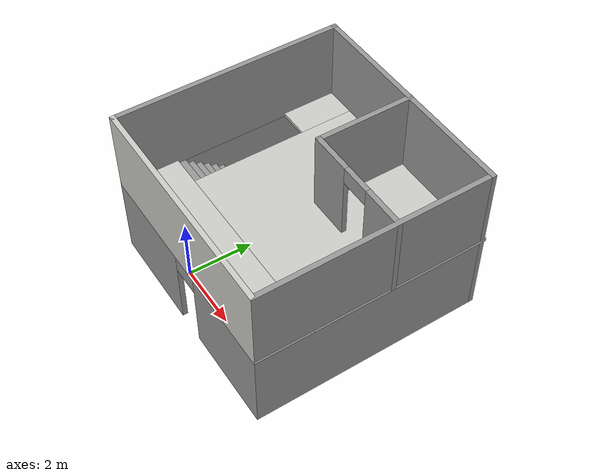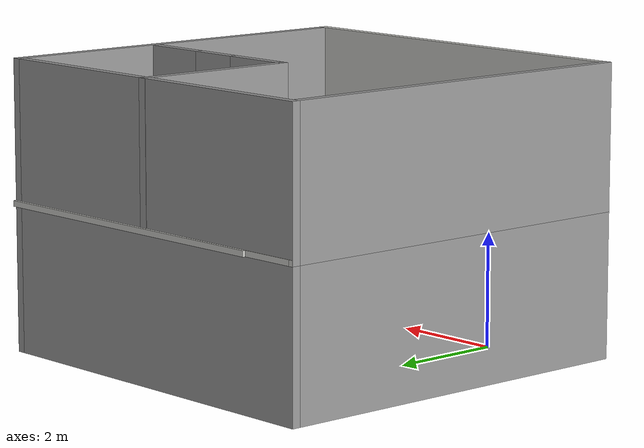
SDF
<?xml version='1.0'?>
<sdf version='1.6'>
  <model name='Square_Building'>
    <pose frame=''>1.58944 2.61352 0 0 -0 0</pose>
    <link name='Floor_1'>
      <pose frame=''>0 0 2.5 0 -0 0</pose>
      <visual name='Floor_1_Visual_0'>
        <pose frame=''>-3.46049 0 0.05 0 -0 0</pose>
        <geometry>
          <box>
            <size>0.079016 7.0068 0.1</size>
          </box>
        </geometry>
        <material>
          <script>
            <uri>file://media/materials/scripts/gazebo.material</uri>
            <name>Gazebo/CeilingTiled</name>
          </script>
          <ambient>1 0.764706 0.305882 1</ambient>
        </material>
      </visual>
      <collision name='Floor_1_Collision_0'>
        <geometry>
          <box>
            <size>0.079016 7.0068 0.1</size>
          </box>
        </geometry>
        <pose frame=''>-3.46049 0 0.05 0 -0 0</pose>
      </collision>
      <visual name='Floor_1_Visual_1'>
        <pose frame=''>0.039508 -2.65084 0.05 0 -0 0</pose>
        <geometry>
          <box>
            <size>6.92098 1.70511 0.1</size>
          </box>
        </geometry>
        <material>
          <script>
            <uri>file://media/materials/scripts/gazebo.material</uri>
            <name>Gazebo/CeilingTiled</name>
          </script>
          <ambient>1 0.764706 0.305882 1</ambient>
        </material>
      </visual>
      <collision name='Floor_1_Collision_1'>
        <geometry>
          <box>
            <size>6.92098 1.70511 0.1</size>
          </box>
        </geometry>
        <pose frame=''>0.039508 -2.65084 0.05 0 -0 0</pose>
      </collision>
      <visual name='Floor_1_Visual_2'>
        <pose frame=''>0.539508 0.852556 0.05 0 -0 0</pose>
        <geometry>
          <box>
            <size>5.92098 5.30168 0.1</size>
          </box>
        </geometry>
        <material>
          <script>
            <uri>file://media/materials/scripts/gazebo.material</uri>
            <name>Gazebo/CeilingTiled</name>
          </script>
          <ambient>1 0.764706 0.305882 1</ambient>
        </material>
      </visual>
      <collision name='Floor_1_Collision_2'>
        <geometry>
          <box>
            <size>5.92098 5.30168 0.1</size>
          </box>
        </geometry>
        <pose frame=''>0.539508 0.852556 0.05 0 -0 0</pose>
      </collision>
      <visual name='Floor_1_Visual_3'>
        <pose frame=''>-2.92098 2.60256 0.05 0 -0 0</pose>
        <geometry>
          <box>
            <size>1 1.80168 0.1</size>
          </box>
        </geometry>
        <material>
          <script>
            <uri>file://media/materials/scripts/gazebo.material</uri>
            <name>Gazebo/CeilingTiled</name>
          </script>
          <ambient>1 0.764706 0.305882 1</ambient>
        </material>
      </visual>
      <collision name='Floor_1_Collision_3'>
        <geometry>
          <box>
            <size>1 1.80168 0.1</size>
          </box>
        </geometry>
        <pose frame=''>-2.92098 2.60256 0.05 0 -0 0</pose>
      </collision>
      <visual name='Floor_1_Visual_4'>
        <pose frame=''>0.539508 3.5034 0.05 0 -0 0</pose>
        <geometry>
          <box>
            <size>5.92098 0.1 0.1</size>
          </box>
        </geometry>
        <material>
          <script>
            <uri>file://media/materials/scripts/gazebo.material</uri>
            <name>Gazebo/CeilingTiled</name>
          </script>
          <ambient>1 0.764706 0.305882 1</ambient>
        </material>
      </visual>
      <collision name='Floor_1_Collision_4'>
        <geometry>
          <box>
            <size>5.92098 0.1 0.1</size>
          </box>
        </geometry>
        <pose frame=''>0.539508 3.5034 0.05 0 -0 0</pose>
      </collision>
    </link>
    <link name='Stairs_1'>
      <visual name='Stairs_1_Visual_0'>
        <pose frame=''>-2.92098 1.58505 0.083333 0 -0 0</pose>
        <geometry>
          <box>
            <size>1 0.233333 0.166667</size>
          </box>
        </geometry>
        <material>
          <script>
            <uri>file://media/materials/scripts/gazebo.material</uri>
            <name>Gazebo/Grey</name>
          </script>
          <ambient>1 1 1 1</ambient>
        </material>
      </visual>
      <collision name='Stairs_1_Collision_0'>
        <geometry>
          <box>
            <size>1 0.233333 0.166667</size>
          </box>
        </geometry>
        <pose frame=''>-2.92098 1.58505 0.083333 0 -0 0</pose>
      </collision>
      <visual name='Stairs_1_Visual_1'>
        <pose frame=''>-2.92098 1.35171 0.25 0 -0 0</pose>
        <geometry>
          <box>
            <size>1 0.233333 0.166667</size>
          </box>
        </geometry>
        <material>
          <script>
            <uri>file://media/materials/scripts/gazebo.material</uri>
            <name>Gazebo/Grey</name>
          </script>
          <ambient>1 1 1 1</ambient>
        </material>
      </visual>
      <collision name='Stairs_1_Collision_1'>
        <geometry>
          <box>
            <size>1 0.233333 0.166667</size>
          </box>
        </geometry>
        <pose frame=''>-2.92098 1.35171 0.25 0 -0 0</pose>
      </collision>
      <visual name='Stairs_1_Visual_2'>
        <pose frame=''>-2.92098 1.11838 0.416667 0 -0 0</pose>
        <geometry>
          <box>
            <size>1 0.233333 0.166667</size>
          </box>
        </geometry>
        <material>
          <script>
            <uri>file://media/materials/scripts/gazebo.material</uri>
            <name>Gazebo/Grey</name>
          </script>
          <ambient>1 1 1 1</ambient>
        </material>
      </visual>
      <collision name='Stairs_1_Collision_2'>
        <geometry>
          <box>
            <size>1 0.233333 0.166667</size>
          </box>
        </geometry>
        <pose frame=''>-2.92098 1.11838 0.416667 0 -0 0</pose>
      </collision>
      <visual name='Stairs_1_Visual_3'>
        <pose frame=''>-2.92098 0.885047 0.583333 0 -0 0</pose>
        <geometry>
          <box>
            <size>1 0.233333 0.166667</size>
          </box>
        </geometry>
        <material>
          <script>
            <uri>file://media/materials/scripts/gazebo.material</uri>
            <name>Gazebo/Grey</name>
          </script>
          <ambient>1 1 1 1</ambient>
        </material>
      </visual>
      <collision name='Stairs_1_Collision_3'>
        <geometry>
          <box>
            <size>1 0.233333 0.166667</size>
          </box>
        </geometry>
        <pose frame=''>-2.92098 0.885047 0.583333 0 -0 0</pose>
      </collision>
      <visual name='Stairs_1_Visual_4'>
        <pose frame=''>-2.92098 0.651714 0.75 0 -0 0</pose>
        <geometry>
          <box>
            <size>1 0.233333 0.166667</size>
          </box>
        </geometry>
        <material>
          <script>
            <uri>file://media/materials/scripts/gazebo.material</uri>
            <name>Gazebo/Grey</name>
          </script>
          <ambient>1 1 1 1</ambient>
        </material>
      </visual>
      <collision name='Stairs_1_Collision_4'>
        <geometry>
          <box>
            <size>1 0.233333 0.166667</size>
          </box>
        </geometry>
        <pose frame=''>-2.92098 0.651714 0.75 0 -0 0</pose>
      </collision>
      <visual name='Stairs_1_Visual_5'>
        <pose frame=''>-2.92098 0.41838 0.916667 0 -0 0</pose>
        <geometry>
          <box>
            <size>1 0.233333 0.166667</size>
          </box>
        </geometry>
        <material>
          <script>
            <uri>file://media/materials/scripts/gazebo.material</uri>
            <name>Gazebo/Grey</name>
          </script>
          <ambient>1 1 1 1</ambient>
        </material>
      </visual>
      <collision name='Stairs_1_Collision_5'>
        <geometry>
          <box>
            <size>1 0.233333 0.166667</size>
          </box>
        </geometry>
        <pose frame=''>-2.92098 0.41838 0.916667 0 -0 0</pose>
      </collision>
      <visual name='Stairs_1_Visual_6'>
        <pose frame=''>-2.92098 0.185047 1.08333 0 -0 0</pose>
        <geometry>
          <box>
            <size>1 0.233333 0.166667</size>
          </box>
        </geometry>
        <material>
          <script>
            <uri>file://media/materials/scripts/gazebo.material</uri>
            <name>Gazebo/Grey</name>
          </script>
          <ambient>1 1 1 1</ambient>
        </material>
      </visual>
      <collision name='Stairs_1_Collision_6'>
        <geometry>
          <box>
            <size>1 0.233333 0.166667</size>
          </box>
        </geometry>
        <pose frame=''>-2.92098 0.185047 1.08333 0 -0 0</pose>
      </collision>
      <visual name='Stairs_1_Visual_7'>
        <pose frame=''>-2.92098 -0.048286 1.25 0 -0 0</pose>
        <geometry>
          <box>
            <size>1 0.233333 0.166667</size>
          </box>
        </geometry>
        <material>
          <script>
            <uri>file://media/materials/scripts/gazebo.material</uri>
            <name>Gazebo/Grey</name>
          </script>
          <ambient>1 1 1 1</ambient>
        </material>
      </visual>
      <collision name='Stairs_1_Collision_7'>
        <geometry>
          <box>
            <size>1 0.233333 0.166667</size>
          </box>
        </geometry>
        <pose frame=''>-2.92098 -0.048286 1.25 0 -0 0</pose>
      </collision>
      <visual name='Stairs_1_Visual_8'>
        <pose frame=''>-2.92098 -0.28162 1.41667 0 -0 0</pose>
        <geometry>
          <box>
            <size>1 0.233333 0.166667</size>
          </box>
        </geometry>
        <material>
          <script>
            <uri>file://media/materials/scripts/gazebo.material</uri>
            <name>Gazebo/Grey</name>
          </script>
          <ambient>1 1 1 1</ambient>
        </material>
      </visual>
      <collision name='Stairs_1_Collision_8'>
        <geometry>
          <box>
            <size>1 0.233333 0.166667</size>
          </box>
        </geometry>
        <pose frame=''>-2.92098 -0.28162 1.41667 0 -0 0</pose>
      </collision>
      <visual name='Stairs_1_Visual_9'>
        <pose frame=''>-2.92098 -0.514953 1.58333 0 -0 0</pose>
        <geometry>
          <box>
            <size>1 0.233333 0.166667</size>
          </box>
        </geometry>
        <material>
          <script>
            <uri>file://media/materials/scripts/gazebo.material</uri>
            <name>Gazebo/Grey</name>
          </script>
          <ambient>1 1 1 1</ambient>
        </material>
      </visual>
      <collision name='Stairs_1_Collision_9'>
        <geometry>
          <box>
            <size>1 0.233333 0.166667</size>
          </box>
        </geometry>
        <pose frame=''>-2.92098 -0.514953 1.58333 0 -0 0</pose>
      </collision>
      <visual name='Stairs_1_Visual_10'>
        <pose frame=''>-2.92098 -0.748286 1.75 0 -0 0</pose>
        <geometry>
          <box>
            <size>1 0.233333 0.166667</size>
          </box>
        </geometry>
        <material>
          <script>
            <uri>file://media/materials/scripts/gazebo.material</uri>
            <name>Gazebo/Grey</name>
          </script>
          <ambient>1 1 1 1</ambient>
        </material>
      </visual>
      <collision name='Stairs_1_Collision_10'>
        <geometry>
          <box>
            <size>1 0.233333 0.166667</size>
          </box>
        </geometry>
        <pose frame=''>-2.92098 -0.748286 1.75 0 -0 0</pose>
      </collision>
      <visual name='Stairs_1_Visual_11'>
        <pose frame=''>-2.92098 -0.98162 1.91667 0 -0 0</pose>
        <geometry>
          <box>
            <size>1 0.233333 0.166667</size>
          </box>
        </geometry>
        <material>
          <script>
            <uri>file://media/materials/scripts/gazebo.material</uri>
            <name>Gazebo/Grey</name>
          </script>
          <ambient>1 1 1 1</ambient>
        </material>
      </visual>
      <collision name='Stairs_1_Collision_11'>
        <geometry>
          <box>
            <size>1 0.233333 0.166667</size>
          </box>
        </geometry>
        <pose frame=''>-2.92098 -0.98162 1.91667 0 -0 0</pose>
      </collision>
      <visual name='Stairs_1_Visual_12'>
        <pose frame=''>-2.92098 -1.21495 2.08333 0 -0 0</pose>
        <geometry>
          <box>
            <size>1 0.233333 0.166667</size>
          </box>
        </geometry>
        <material>
          <script>
            <uri>file://media/materials/scripts/gazebo.material</uri>
            <name>Gazebo/Grey</name>
          </script>
          <ambient>1 1 1 1</ambient>
        </material>
      </visual>
      <collision name='Stairs_1_Collision_12'>
        <geometry>
          <box>
            <size>1 0.233333 0.166667</size>
          </box>
        </geometry>
        <pose frame=''>-2.92098 -1.21495 2.08333 0 -0 0</pose>
      </collision>
      <visual name='Stairs_1_Visual_13'>
        <pose frame=''>-2.92098 -1.44829 2.25 0 -0 0</pose>
        <geometry>
          <box>
            <size>1 0.233333 0.166667</size>
          </box>
        </geometry>
        <material>
          <script>
            <uri>file://media/materials/scripts/gazebo.material</uri>
            <name>Gazebo/Grey</name>
          </script>
          <ambient>1 1 1 1</ambient>
        </material>
      </visual>
      <collision name='Stairs_1_Collision_13'>
        <geometry>
          <box>
            <size>1 0.233333 0.166667</size>
          </box>
        </geometry>
        <pose frame=''>-2.92098 -1.44829 2.25 0 -0 0</pose>
      </collision>
      <visual name='Stairs_1_Visual_14'>
        <pose frame=''>-2.92098 -1.68162 2.41667 0 -0 0</pose>
        <geometry>
          <box>
            <size>1 0.233333 0.166667</size>
          </box>
        </geometry>
        <material>
          <script>
            <uri>file://media/materials/scripts/gazebo.material</uri>
            <name>Gazebo/Grey</name>
          </script>
          <ambient>1 1 1 1</ambient>
        </material>
      </visual>
      <collision name='Stairs_1_Collision_14'>
        <geometry>
          <box>
            <size>1 0.233333 0.166667</size>
          </box>
        </geometry>
        <pose frame=''>-2.92098 -1.68162 2.41667 0 -0 0</pose>
      </collision>
    </link>
    <link name='Wall_11'>
      <collision name='Wall_11_Collision'>
        <geometry>
          <box>
            <size>7 0.15 2.5</size>
          </box>
        </geometry>
        <pose frame=''>0 0 1.25 0 -0 0</pose>
      </collision>
      <visual name='Wall_11_Visual'>
        <pose frame=''>0 0 1.25 0 -0 0</pose>
        <geometry>
          <box>
            <size>7 0.15 2.5</size>
          </box>
        </geometry>
        <material>
          <script>
            <uri>file://media/materials/scripts/gazebo.material</uri>
            <name>Gazebo/Grey</name>
          </script>
          <ambient>1 1 1 1</ambient>
        </material>
      </visual>
      <pose frame=''>3.42482 -0.003399 0 0 -0 1.5708</pose>
    </link>
    <link name='Wall_12'>
      <collision name='Wall_12_Collision'>
        <geometry>
          <box>
            <size>7 0.15 2.5</size>
          </box>
        </geometry>
        <pose frame=''>0 0 1.25 0 -0 0</pose>
      </collision>
      <visual name='Wall_12_Visual'>
        <pose frame=''>0 0 1.25 0 -0 0</pose>
        <geometry>
          <box>
            <size>7 0.15 2.5</size>
          </box>
        </geometry>
        <material>
          <script>
            <uri>file://media/materials/scripts/gazebo.material</uri>
            <name>Gazebo/Grey</name>
          </script>
          <ambient>1 1 1 1</ambient>
        </material>
      </visual>
      <pose frame=''>-0.000183 3.4216 0 0 -0 3.14159</pose>
    </link>
    <link name='Wall_13'>
      <collision name='Wall_13_Collision'>
        <geometry>
          <box>
            <size>7 0.15 2.5</size>
          </box>
        </geometry>
        <pose frame=''>0 0 1.25 0 -0 0</pose>
      </collision>
      <visual name='Wall_13_Visual'>
        <pose frame=''>0 0 1.25 0 -0 0</pose>
        <geometry>
          <box>
            <size>7 0.15 2.5</size>
          </box>
        </geometry>
        <material>
          <script>
            <uri>file://media/materials/scripts/gazebo.material</uri>
            <name>Gazebo/Grey</name>
          </script>
          <ambient>1 1 1 1</ambient>
        </material>
      </visual>
      <pose frame=''>-3.42518 -0.003399 0 0 0 -1.5708</pose>
    </link>
    <link name='Wall_19'>
      <collision name='Wall_19_Collision'>
        <geometry>
          <box>
            <size>7 0.15 2.5</size>
          </box>
        </geometry>
        <pose frame=''>0 0 1.25 0 -0 0</pose>
      </collision>
      <visual name='Wall_19_Visual'>
        <pose frame=''>0 0 1.25 0 -0 0</pose>
        <geometry>
          <box>
            <size>7 0.15 2.5</size>
          </box>
        </geometry>
        <material>
          <script>
            <uri>file://media/materials/scripts/gazebo.material</uri>
            <name>Gazebo/CeilingTiled</name>
          </script>
          <ambient>1 1 1 1</ambient>
        </material>
      </visual>
      <pose frame=''>-0.000183 -3.4284 2.5 0 -0 0</pose>
    </link>
    <link name='Wall_20'>
      <collision name='Wall_20_Collision'>
        <geometry>
          <box>
            <size>7 0.15 2.5</size>
          </box>
        </geometry>
        <pose frame=''>0 0 1.25 0 -0 0</pose>
      </collision>
      <visual name='Wall_20_Visual'>
        <pose frame=''>0 0 1.25 0 -0 0</pose>
        <geometry>
          <box>
            <size>7 0.15 2.5</size>
          </box>
        </geometry>
        <material>
          <script>
            <uri>file://media/materials/scripts/gazebo.material</uri>
            <name>Gazebo/Grey</name>
          </script>
          <ambient>1 1 1 1</ambient>
        </material>
      </visual>
      <pose frame=''>3.42482 -0.003399 2.5 0 -0 1.5708</pose>
    </link>
    <link name='Wall_21'>
      <collision name='Wall_21_Collision'>
        <geometry>
          <box>
            <size>7 0.15 2.5</size>
          </box>
        </geometry>
        <pose frame=''>0 0 1.25 0 -0 0</pose>
      </collision>
      <visual name='Wall_21_Visual'>
        <pose frame=''>0 0 1.25 0 -0 0</pose>
        <geometry>
          <box>
            <size>7 0.15 2.5</size>
          </box>
        </geometry>
        <material>
          <script>
            <uri>file://media/materials/scripts/gazebo.material</uri>
            <name>Gazebo/Grey</name>
          </script>
          <ambient>1 1 1 1</ambient>
        </material>
      </visual>
      <pose frame=''>-0.000183 3.4216 2.5 0 -0 3.14159</pose>
    </link>
    <link name='Wall_22'>
      <collision name='Wall_22_Collision'>
        <geometry>
          <box>
            <size>7 0.15 2.5</size>
          </box>
        </geometry>
        <pose frame=''>0 0 1.25 0 -0 0</pose>
      </collision>
      <visual name='Wall_22_Visual'>
        <pose frame=''>0 0 1.25 0 -0 0</pose>
        <geometry>
          <box>
            <size>7 0.15 2.5</size>
          </box>
        </geometry>
        <material>
          <script>
            <uri>file://media/materials/scripts/gazebo.material</uri>
            <name>Gazebo/Grey</name>
          </script>
          <ambient>1 1 1 1</ambient>
        </material>
      </visual>
      <pose frame=''>-3.42518 -0.003399 2.5 0 0 -1.5708</pose>
    </link>
    <link name='Wall_23'>
      <collision name='Wall_23_Collision'>
        <geometry>
          <box>
            <size>3 0.15 2.5</size>
          </box>
        </geometry>
        <pose frame=''>0 0 1.25 0 -0 0</pose>
      </collision>
      <visual name='Wall_23_Visual'>
        <pose frame=''>0 0 1.25 0 -0 0</pose>
        <geometry>
          <box>
            <size>3 0.15 2.5</size>
          </box>
        </geometry>
        <material>
          <script>
            <uri>file://media/materials/scripts/gazebo.material</uri>
            <name>Gazebo/Grey</name>
          </script>
          <ambient>1 1 1 1</ambient>
        </material>
      </visual>
      <pose frame=''>0.075183 2.0034 2.5 0 0 -1.5708</pose>
    </link>
    <link name='Wall_24'>
      <pose frame=''>1.75018 0.578399 2.5 0 -0 0</pose>
      <visual name='Wall_24_Visual_0'>
        <pose frame=''>-1.10366 0 1.25 0 -0 0</pose>
        <geometry>
          <box>
            <size>1.29268 0.15 2.5</size>
          </box>
        </geometry>
        <material>
          <script>
            <uri>file://media/materials/scripts/gazebo.material</uri>
            <name>Gazebo/Grey</name>
          </script>
          <ambient>1 1 1 1</ambient>
        </material>
      </visual>
      <collision name='Wall_24_Collision_0'>
        <geometry>
          <box>
            <size>1.29268 0.15 2.5</size>
          </box>
        </geometry>
        <pose frame=''>-1.10366 0 1.25 0 -0 0</pose>
      </collision>
      <visual name='Wall_24_Visual_1'>
        <pose frame=''>1.09634 0 1.25 0 -0 0</pose>
        <geometry>
          <box>
            <size>1.30732 0.15 2.5</size>
          </box>
        </geometry>
        <material>
          <script>
            <uri>file://media/materials/scripts/gazebo.material</uri>
            <name>Gazebo/Grey</name>
          </script>
          <ambient>1 1 1 1</ambient>
        </material>
      </visual>
      <collision name='Wall_24_Collision_1'>
        <geometry>
          <box>
            <size>1.30732 0.15 2.5</size>
          </box>
        </geometry>
        <pose frame=''>1.09634 0 1.25 0 -0 0</pose>
      </collision>
      <visual name='Wall_24_Visual_2'>
        <pose frame=''>-0.007322 0 2.25 0 -0 0</pose>
        <geometry>
          <box>
            <size>0.9 0.15 0.5</size>
          </box>
        </geometry>
        <material>
          <script>
            <uri>file://media/materials/scripts/gazebo.material</uri>
            <name>Gazebo/Grey</name>
          </script>
          <ambient>1 1 1 1</ambient>
        </material>
      </visual>
      <collision name='Wall_24_Collision_2'>
        <geometry>
          <box>
            <size>0.9 0.15 0.5</size>
          </box>
        </geometry>
        <pose frame=''>-0.007322 0 2.25 0 -0 0</pose>
      </collision>
    </link>
    <link name='Wall_8'>
      <pose frame=''>-0.000183 -3.4284 0 0 -0 0</pose>
      <visual name='Wall_8_Visual_0'>
        <pose frame=''>-1.95145 0 1.25 0 -0 0</pose>
        <geometry>
          <box>
            <size>3.0971 0.15 2.5</size>
          </box>
        </geometry>
        <material>
          <script>
            <uri>file://media/materials/scripts/gazebo.material</uri>
            <name>Gazebo/Grey</name>
          </script>
          <ambient>1 1 1 1</ambient>
        </material>
      </visual>
      <collision name='Wall_8_Collision_0'>
        <geometry>
          <box>
            <size>3.0971 0.15 2.5</size>
          </box>
        </geometry>
        <pose frame=''>-1.95145 0 1.25 0 -0 0</pose>
      </collision>
      <visual name='Wall_8_Visual_1'>
        <pose frame=''>1.99855 0 1.25 0 -0 0</pose>
        <geometry>
          <box>
            <size>3.0029 0.15 2.5</size>
          </box>
        </geometry>
        <material>
          <script>
            <uri>file://media/materials/scripts/gazebo.material</uri>
            <name>Gazebo/Grey</name>
          </script>
          <ambient>1 1 1 1</ambient>
        </material>
      </visual>
      <collision name='Wall_8_Collision_1'>
        <geometry>
          <box>
            <size>3.0029 0.15 2.5</size>
          </box>
        </geometry>
        <pose frame=''>1.99855 0 1.25 0 -0 0</pose>
      </collision>
      <visual name='Wall_8_Visual_2'>
        <pose frame=''>0.047101 0 2.25 0 -0 0</pose>
        <geometry>
          <box>
            <size>0.9 0.15 0.5</size>
          </box>
        </geometry>
        <material>
          <script>
            <uri>file://media/materials/scripts/gazebo.material</uri>
            <name>Gazebo/Grey</name>
          </script>
          <ambient>1 1 1 1</ambient>
        </material>
      </visual>
      <collision name='Wall_8_Collision_2'>
        <geometry>
          <box>
            <size>0.9 0.15 0.5</size>
          </box>
        </geometry>
        <pose frame=''>0.047101 0 2.25 0 -0 0</pose>
      </collision>
    </link>
    <static>1</static>
  </model>
</sdf>
